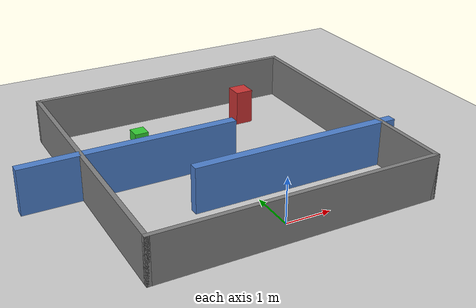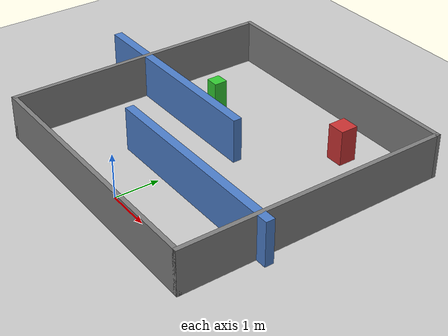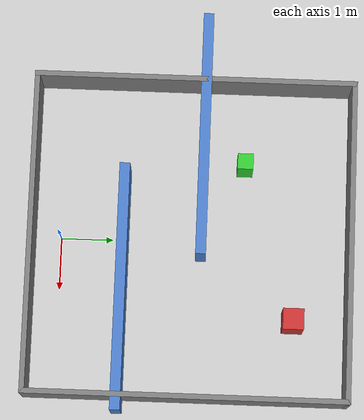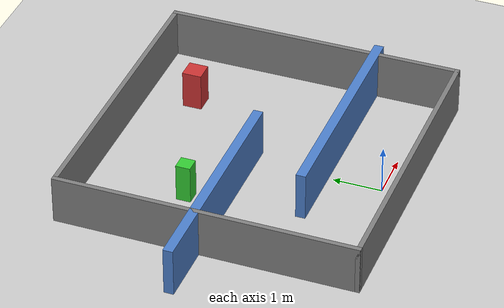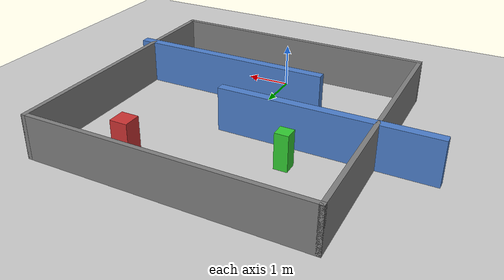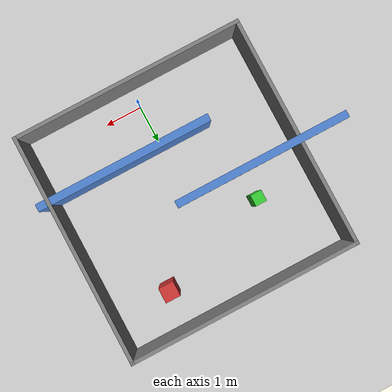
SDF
<?xml version="1.0"?>
<sdf version="1.8">
  <world name="simple_room">

    <!-- 물리 엔진 -->
    <physics name="default_physics" type="ode">
      <max_step_size>0.001</max_step_size>
      <real_time_factor>1.0</real_time_factor>
    </physics>

    <!-- 시스템 플러그인 -->
    <plugin filename="libignition-gazebo-physics-system.so"
            name="ignition::gazebo::systems::Physics"/>
    <plugin filename="libignition-gazebo-sensors-system.so"
            name="ignition::gazebo::systems::Sensors">
      <render_engine>ogre2</render_engine>
    </plugin>
    <plugin filename="libignition-gazebo-scene-broadcaster-system.so"
            name="ignition::gazebo::systems::SceneBroadcaster"/>
    <!-- UserCommands: /world/simple_room/set_pose 서비스 제공 -->
    <plugin filename="libignition-gazebo-user-commands-system.so"
            name="ignition::gazebo::systems::UserCommands"/>
    <plugin filename="libignition-gazebo-imu-system.so"
            name="ignition::gazebo::systems::Imu"/>

    <!-- 조명 -->
    <light name="sun" type="directional">
      <cast_shadows>true</cast_shadows>
      <pose>0 2.5 10 0 0 0</pose>
      <diffuse>1 1 1 1</diffuse>
      <specular>0.5 0.5 0.5 1</specular>
      <direction>-0.5 0.1 -0.9</direction>
    </light>

    <!-- 바닥 -->
    <model name="ground_plane">
      <static>true</static>
      <link name="link">
        <collision name="collision">
          <geometry><plane><normal>0 0 1</normal></plane></geometry>
        </collision>
        <visual name="visual">
          <geometry><plane>
            <normal>0 0 1</normal>
            <size>20 20</size>
          </plane></geometry>
          <material>
            <ambient>0.8 0.8 0.8 1</ambient>
            <diffuse>0.8 0.8 0.8 1</diffuse>
          </material>
        </visual>
      </link>
    </model>

    <!-- 북벽: y=+5.55, 길이 6.2m -->
    <model name="wall_north">
      <static>true</static>
      <pose>0 5.55 0.5 0 0 0</pose>
      <link name="link">
        <collision name="collision">
          <geometry><box><size>6.2 0.1 1.0</size></box></geometry>
        </collision>
        <visual name="visual">
          <geometry><box><size>6.2 0.1 1.0</size></box></geometry>
          <material><ambient>0.5 0.5 0.5 1</ambient></material>
        </visual>
      </link>
    </model>

    <!-- 남벽: y=-0.55, 길이 6.2m -->
    <model name="wall_south">
      <static>true</static>
      <pose>0 -0.55 0.5 0 0 0</pose>
      <link name="link">
        <collision name="collision">
          <geometry><box><size>6.2 0.1 1.0</size></box></geometry>
        </collision>
        <visual name="visual">
          <geometry><box><size>6.2 0.1 1.0</size></box></geometry>
          <material><ambient>0.5 0.5 0.5 1</ambient></material>
        </visual>
      </link>
    </model>

    <!-- 동벽: x=+3.05, 길이 6.2m (y 중심: (-0.5+5.5)/2 = 2.5) -->
    <model name="wall_east">
      <static>true</static>
      <pose>3.05 2.5 0.5 0 0 0</pose>
      <link name="link">
        <collision name="collision">
          <geometry><box><size>0.1 6.2 1.0</size></box></geometry>
        </collision>
        <visual name="visual">
          <geometry><box><size>0.1 6.2 1.0</size></box></geometry>
          <material><ambient>0.5 0.5 0.5 1</ambient></material>
        </visual>
      </link>
    </model>

    <!-- 서벽: x=-3.05, 길이 6.2m -->
    <model name="wall_west">
      <static>true</static>
      <pose>-3.05 2.5 0.5 0 0 0</pose>
      <link name="link">
        <collision name="collision">
          <geometry><box><size>0.1 6.2 1.0</size></box></geometry>
        </collision>
        <visual name="visual">
          <geometry><box><size>0.1 6.2 1.0</size></box></geometry>
          <material><ambient>0.5 0.5 0.5 1</ambient></material>
        </visual>
      </link>
    </model>

    <!-- 격벽B (y=+1.0) -->
    <model name="partition_B">
      <static>true</static>
      <pose>1 1.2 0.5 0 0 0</pose>
      <link name="link">
        <collision name="collision">
          <geometry><box><size>4.7 0.2 1.0</size></box></geometry>
        </collision>
        <visual name="visual">
          <geometry><box><size>4.7 0.2 1.0</size></box></geometry>
          <material><ambient>0.3 0.5 0.8 1</ambient></material>
        </visual>
      </link>
    </model>

    <!-- 격벽A (y=+2.0) -->
    <model name="partition_A">
      <static>true</static>
      <pose>-2.0 2.7 0.5 0 0 0</pose>
      <link name="link">
        <collision name="collision">
          <geometry><box><size>4.7 0.2 1.0</size></box></geometry>
        </collision>
        <visual name="visual">
          <geometry><box><size>4.7 0.2 1.0</size></box></geometry>
          <material><ambient>0.3 0.5 0.8 1</ambient></material>
        </visual>
      </link>
    </model>

    <model name="static_obs">
      <static>true</static>
      <pose>1.5 4.5 0.4 0 0 0</pose>
      <link name="link">
        <collision name="collision">
          <geometry><box><size>0.4 0.4 0.8</size></box></geometry>
        </collision>
        <visual name="visual">
          <geometry><box><size>0.4 0.4 0.8</size></box></geometry>
          <material>
            <ambient>0.8 0.2 0.2 1</ambient>
            <diffuse>0.8 0.2 0.2 1</diffuse>
          </material>
        </visual>
      </link>
    </model>

    <model name="dyn_obs_1">
      <static>false</static>
      <pose>-1.5 3.5 0.4 0 0 0</pose>
      <link name="link">
        <gravity>false</gravity>
        <inertial>
          <mass>20.0</mass>
          <inertia>
            <ixx>1.2</ixx>
            <ixy>0</ixy>
            <ixz>0</ixz>
            <iyy>1.2</iyy>
            <iyz>0</iyz>
            <izz>1.2</izz>
          </inertia>
        </inertial>
        <collision name="collision">
          <geometry><box><size>0.3 0.3 0.8</size></box></geometry>
        </collision>
        <visual name="visual">
          <geometry><box><size>0.3 0.3 0.8</size></box></geometry>
          <material>
            <ambient>0.2 0.8 0.2 1</ambient>
            <diffuse>0.2 0.8 0.2 1</diffuse>
            <emissive>0.0 0.2 0.0 1</emissive>
          </material>
        </visual>
      </link>
      <plugin
        filename="ignition-gazebo-velocity-control-system"
        name="gz::sim::systems::VelocityControl">
      </plugin>
    </model>

  </world>
</sdf>
